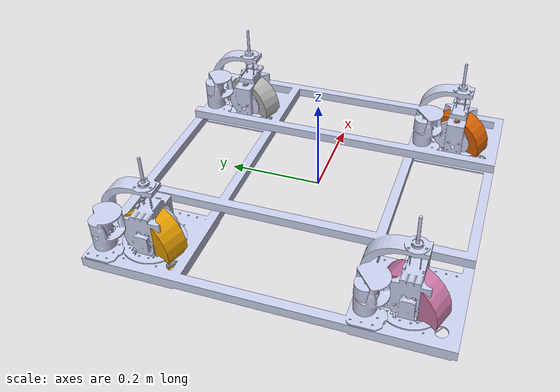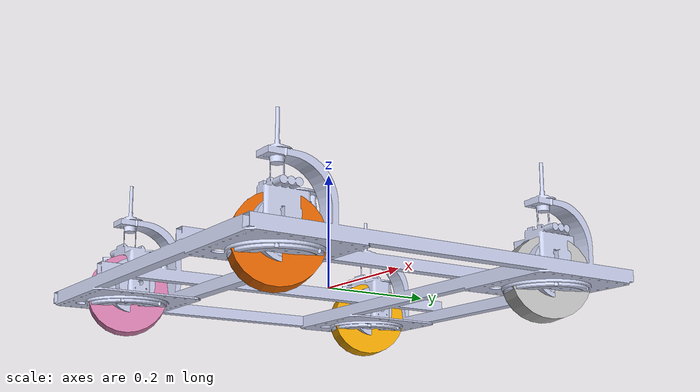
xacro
<?xml version="1.0" encoding="utf-8"?>
<robot name="mybot" xmlns:xacro="http://ros.org/wiki/xacro"
	xmlns:sensor="http://playerstage.sourceforge.net/gazebo/xmlschema/#sensor"
        xmlns:controller="http://playerstage.sourceforge.net/gazebo/xmlschema/#controller"
        xmlns:interface="http://playerstage.sourceforge.net/gazebo/xmlschema/#interface"
 >

<xacro:include filename="$(find swerve)/urdf/urdfAssm2.gazebo.xacro" />
<xacro:include filename="$(find swerve)/urdf/macros.xacro" />
<xacro:property name="PI" value="3.1415926535897931"/>
<xacro:property name="wheelrad" value="0.07"/>
<xacro:property name="wheeleng" value="0.05"/>
  <link
    name="base_link">
    <inertial>
      <origin
        xyz="-0.016740350844899 0.0307423784997515 -0.0323146494975246"
        rpy="0 0 0" />
      <mass
        value="1.83813014538573" />
      <inertia
        ixx="0.0126527136163981"
        ixy="-2.08028592840101E-05"
        ixz="1.89181976316372E-08"
        iyy="0.0214525871748862"
        iyz="-0.000346791397246124"
        izz="0.0108801705210895" />
    </inertial>
    <visual>
      <origin
        xyz="0 0 0"
        rpy="0 0 0" />
      <geometry>
        <mesh
          filename="package://urdfAssm2/meshes/base_link.STL" />
      </geometry>
      <material
        name="">
        <color
          rgba="0.792156862745098 0.819607843137255 0.933333333333333 1" />
      </material>
    </visual>
    <collision>
      <origin
        xyz="0 0 0"
        rpy="0 0 0" />
      <geometry>
        <mesh
          filename="package://urdfAssm2/meshes/base_link.STL" />
      </geometry>
    </collision>
  </link>
  <link
    name="swer1">
    <inertial>
      <origin
        xyz="0.00112932650883885 -0.0163068625808451 -0.00309777579378279"
        rpy="0 0 0" />
      <mass
        value="0.781511757095579" />
      <inertia
        ixx="0.000843060389202077"
        ixy="1.39670594351371E-05"
        ixz="-7.58494977239166E-06"
        iyy="0.000817015924616437"
        iyz="-3.73146040650031E-05"
        izz="0.000859803598059485" />
    </inertial>
    <visual>
      <origin
        xyz="0 0 0"
        rpy="0 0 0" />
      <geometry>
        <mesh
          filename="package://urdfAssm2/meshes/swer1.STL" />
      </geometry>
      <material
        name="">
        <color
          rgba="0.792156862745098 0.819607843137255 0.933333333333333 1" />
      </material>
    </visual>
    <collision>
      <origin
        xyz="0 0 0"
        rpy="0 0 0" />
      <geometry>
        <mesh
          filename="package://urdfAssm2/meshes/swer1.STL" />
      </geometry>
    </collision>
  </link>
  <joint
    name="rejo1"
    type="continuous">
    <origin
      xyz="0.26 -0.26 0"
      rpy="-1.5707963267949 0 -1.93881529154163" />
    <parent
      link="base_link" />
    <child
      link="swer1" />
    <axis
      xyz="0 1 0" />
  </joint>
<transmission name="S1_rerans">
    <type>transmission_interface/SimpleTransmission</type>
      <joint name="rejo1">
          <hardwareInterface>hardware_interface/VelocityJointInterface</hardwareInterface>
      </joint>
      <actuator name="S1_revotor">
          <mechanicalReduction>1</mechanicalReduction>
      </actuator>
  </transmission>
  <link
    name="swer2">
    <inertial>
      <origin
        xyz="0.00112932650883885 -0.0163068625808454 -0.00309777579378301"
        rpy="0 0 0" />
      <mass
        value="0.78151175709558" />
      <inertia
        ixx="0.000843060389202078"
        ixy="1.39670594351372E-05"
        ixz="-7.58494977239191E-06"
        iyy="0.000817015924616439"
        iyz="-3.73146040650027E-05"
        izz="0.000859803598059486" />
    </inertial>
    <visual>
      <origin
        xyz="0 0 0"
        rpy="0 0 0" />
      <geometry>
        <mesh
          filename="package://urdfAssm2/meshes/swer2.STL" />
      </geometry>
      <material
        name="">
        <color
          rgba="0.792156862745098 0.819607843137255 0.933333333333333 1" />
      </material>
    </visual>
    <collision>
      <origin
        xyz="0 0 0"
        rpy="0 0 0" />
      <geometry>
        <mesh
          filename="package://urdfAssm2/meshes/swer2.STL" />
      </geometry>
    </collision>
  </link>
  <joint
    name="rejo2"
    type="continuous">
    <origin
      xyz="-0.26 -0.26 0"
      rpy="-1.5707963267949 0 1.20389866029615" />
    <parent
      link="base_link" />
    <child
      link="swer2" />
    <axis
      xyz="0 1 0" />
  </joint>
<transmission name="S2_rerans">
    <type>transmission_interface/SimpleTransmission</type>
      <joint name="rejo2">
          <hardwareInterface>hardware_interface/VelocityJointInterface</hardwareInterface>
      </joint>
      <actuator name="S2_revotor">
          <mechanicalReduction>1</mechanicalReduction>
      </actuator>
  </transmission>
  <link
    name="swer3">
    <inertial>
      <origin
        xyz="0.00112932650883912 -0.0163068625808453 -0.00309777579378304"
        rpy="0 0 0" />
      <mass
        value="0.78151175709558" />
      <inertia
        ixx="0.000843060389202078"
        ixy="1.39670594351371E-05"
        ixz="-7.58494977239294E-06"
        iyy="0.000817015924616437"
        iyz="-3.73146040650033E-05"
        izz="0.000859803598059485" />
    </inertial>
    <visual>
      <origin
        xyz="0 0 0"
        rpy="0 0 0" />
      <geometry>
        <mesh
          filename="package://urdfAssm2/meshes/swer3.STL" />
      </geometry>
      <material
        name="">
        <color
          rgba="0.792156862745098 0.819607843137255 0.933333333333333 1" />
      </material>
    </visual>
    <collision>
      <origin
        xyz="0 0 0"
        rpy="0 0 0" />
      <geometry>
        <mesh
          filename="package://urdfAssm2/meshes/swer3.STL" />
      </geometry>
    </collision>
  </link>
  <joint
    name="rejo3"
    type="continuous">
    <origin
      xyz="0.26 0.26 0"
      rpy="-1.5707963267949 0 -1.93226228110303" />
    <parent
      link="base_link" />
    <child
      link="swer3" />
    <axis
      xyz="0 1 0" />
  </joint>
<transmission name="S3_rerans">
    <type>transmission_interface/SimpleTransmission</type>
      <joint name="rejo3">
          <hardwareInterface>hardware_interface/VelocityJointInterface</hardwareInterface>
      </joint>
      <actuator name="S3_revotor">
          <mechanicalReduction>1</mechanicalReduction>
      </actuator>
  </transmission>
  <link
    name="swer4">
    <inertial>
      <origin
        xyz="0.00112932650883907 -0.0163068625808454 -0.00309777579378329"
        rpy="0 0 0" />
      <mass
        value="0.78151175709558" />
      <inertia
        ixx="0.000843060389202079"
        ixy="1.3967059435137E-05"
        ixz="-7.58494977239397E-06"
        iyy="0.000817015924616437"
        iyz="-3.73146040650027E-05"
        izz="0.000859803598059483" />
    </inertial>
    <visual>
      <origin
        xyz="0 0 0"
        rpy="0 0 0" />
      <geometry>
        <mesh
          filename="package://urdfAssm2/meshes/swer4.STL" />
      </geometry>
      <material
        name="">
        <color
          rgba="0.792156862745098 0.819607843137255 0.933333333333333 1" />
      </material>
    </visual>
    <collision>
      <origin
        xyz="0 0 0"
        rpy="0 0 0" />
      <geometry>
        <mesh
          filename="package://urdfAssm2/meshes/swer4.STL" />
      </geometry>
    </collision>
  </link>
  <joint
    name="rejo4"
    type="continuous">
    <origin
      xyz="-0.26 0.26 0"
      rpy="-1.5707963267949 0 1.21649767020403" />
    <parent
      link="base_link" />
    <child
      link="swer4" />
    <axis
      xyz="0 1 0" />
  </joint>

<transmission name="S4_rerans">
    <type>transmission_interface/SimpleTransmission</type>
      <joint name="rejo4">
          <hardwareInterface>hardware_interface/VelocityJointInterface</hardwareInterface>
      </joint>
      <actuator name="S4_revotor">
          <mechanicalReduction>1</mechanicalReduction>
      </actuator>
  </transmission>

#####
 <link name="S1_wheel_link">
  <collision>
    <origin xyz="0 0 0" rpy="0 ${PI/2} ${PI/2}" />
    <geometry>
      <cylinder length="${wheeleng}" radius="${wheelrad}"/>
    </geometry>
  </collision>

  <visual>
    <origin xyz="0 0 0" rpy="0 ${PI/2} ${PI/2}" />
    <geometry>
      <cylinder length="${wheeleng}" radius="${wheelrad}"/>
    </geometry>
    <color rgba="0.8 0.0 0.0 1.0"/>
  </visual>

  <inertial>
    <origin xyz="0 0 0" rpy="0 ${PI/2} ${PI/2}" />
    <mass value="5"/>
    <cylinder_inertia m="5" r="${wheelrad}" h="${wheeleng}"/>
  </inertial>
</link>

<joint name="S1_wheel_joint" type="continuous">
        <origin xyz="0 0 0" rpy="1.5707 0 0"/>
        <parent link="swer1"/>
        <child link="S1_wheel_link"/>
        <axis xyz="0 1 0"/>
	<limit effort="100" velocity="100"/>
	<joint_properties damping="0.0" friction="0.0"/>
    </joint>

<transmission name="S1_trans">
    <type>transmission_interface/SimpleTransmission</type>
      <joint name="S1_wheel_joint">
          <hardwareInterface>hardware_interface/VelocityJointInterface</hardwareInterface>
      </joint>
      <actuator name="S1_Motor">
          <mechanicalReduction>1</mechanicalReduction>
      </actuator>
  </transmission>

<link name="S2_wheel_link">
  <collision>
    <origin xyz="0 0 0" rpy="0 ${PI/2} ${PI/2}" />
    <geometry>
      <cylinder length="${wheeleng}" radius="${wheelrad}"/>
    </geometry>
  </collision>

  <visual>
    <origin xyz="0 0 0" rpy="0 ${PI/2} ${PI/2}" />
    <geometry>
      <cylinder length="${wheeleng}" radius="${wheelrad}"/>
    </geometry>
    <color rgba="0.8 0.0 0.0 1.0"/>
  </visual>

  <inertial>
    <origin xyz="0 0 0" rpy="0 ${PI/2} ${PI/2}" />
    <mass value="5"/>
    <cylinder_inertia m="5" r="${wheelrad}" h="${wheeleng}"/>
  </inertial>
</link>

<joint name="S2_wheel_joint" type="continuous">
        <origin xyz="0 0 0" rpy="1.5707 0 0"/>
        <parent link="swer2"/>
        <child link="S2_wheel_link"/>
        <axis xyz="0 1 0"/>
	<limit effort="100" velocity="100"/>
	<joint_properties damping="0.0" friction="0.0"/>
    </joint>

<transmission name="S2_trans">
    <type>transmission_interface/SimpleTransmission</type>
      <joint name="S2_wheel_joint">
          <hardwareInterface>hardware_interface/VelocityJointInterface</hardwareInterface>
      </joint>
      <actuator name="S2_Motor">
          <mechanicalReduction>1</mechanicalReduction>
      </actuator>
  </transmission>

<link name="S3_wheel_link">
  <collision>
    <origin xyz="0 0 0" rpy="0 ${PI/2} ${PI/2}" />
    <geometry>
      <cylinder length="${wheeleng}" radius="${wheelrad}"/>
    </geometry>
  </collision>

  <visual>
    <origin xyz="0 0 0" rpy="0 ${PI/2} ${PI/2}" />
    <geometry>
      <cylinder length="${wheeleng}" radius="${wheelrad}"/>
    </geometry>
    <color rgba="0.8 0.0 0.0 1.0"/>
  </visual>

  <inertial>
    <origin xyz="0 0 0" rpy="0 ${PI/2} ${PI/2}" />
    <mass value="5"/>
    <cylinder_inertia m="5" r="${wheelrad}" h="${wheeleng}"/>
  </inertial>
</link>

<joint name="S3_wheel_joint" type="continuous">
        <origin xyz="0 0 0" rpy="1.5707 0 0"/>
        <parent link="swer3"/>
        <child link="S3_wheel_link"/>
        <axis xyz="0 1 0"/>
	<limit effort="100" velocity="100"/>
	<joint_properties damping="0.0" friction="0.0"/>
    </joint>

<transmission name="S3_trans">
    <type>transmission_interface/SimpleTransmission</type>
      <joint name="S3_wheel_joint">
          <hardwareInterface>hardware_interface/VelocityJointInterface</hardwareInterface>
      </joint>
      <actuator name="S3_Motor">
          <mechanicalReduction>1</mechanicalReduction>
      </actuator>
  </transmission>

<link name="S4_wheel_link">
  <collision>
    <origin xyz="0 0 0" rpy="0 ${PI/2} ${PI/2}" />
    <geometry>
      <cylinder length="${wheeleng}" radius="${wheelrad}"/>
    </geometry>
  </collision>

  <visual>
    <origin xyz="0 0 0" rpy="0 ${PI/2} ${PI/2}" />
    <geometry>
      <cylinder length="${wheeleng}" radius="${wheelrad}"/>
    </geometry>
    <color rgba="0.8 0.0 0.0 1.0"/>
  </visual>

  <inertial>
    <origin xyz="0 0 0" rpy="0 ${PI/2} ${PI/2}" />
    <mass value="5"/>
    <cylinder_inertia m="5" r="${wheelrad}" h="${wheeleng}"/>
  </inertial>
</link>

<joint name="S4_wheel_joint" type="continuous">
        <origin xyz="0 0 0" rpy="1.5707 0 0"/>
        <parent link="swer4"/>
        <child link="S4_wheel_link"/>
        <axis xyz="0 1 0"/>
	<limit effort="100" velocity="100"/>
	<joint_properties damping="0.0" friction="0.0"/>
    </joint>

<transmission name="S4_trans">
    <type>transmission_interface/SimpleTransmission</type>
      <joint name="S4_wheel_joint">
          <hardwareInterface>hardware_interface/VelocityJointInterface</hardwareInterface>
      </joint>
      <actuator name="S4_Motor">
          <mechanicalReduction>1</mechanicalReduction>
      </actuator>
  </transmission>
</robot>

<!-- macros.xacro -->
<robot name="mybot" xmlns:xacro="http://www.ros.org/wiki/xacro">
   <!-- Put here the robot description -->
<macro name="cylinder_inertia" params="m r h">
  <inertia  ixx="${m*(3*r*r+h*h)/12}" ixy = "0" ixz = "0"
    iyy="${m*(3*r*r+h*h)/12}" iyz = "0"
    izz="${m*r*r/2}"
  />
</macro>

<macro name="box_inertia" params="m x y z">
  <inertia  ixx="${m*(y*y+z*z)/12}" ixy = "0" ixz = "0"
    iyy="${m*(x*x+z*z)/12}" iyz = "0"
    izz="${m*(x*x+z*z)/12}"
  />
</macro>

<macro name="sphere_inertia" params="m r">
  <inertia  ixx="${2*m*r*r/5}" ixy = "0" ixz = "0"
    iyy="${2*m*r*r/5}" iyz = "0"
    izz="${2*m*r*r/5}"
  />
</macro>
</robot>
